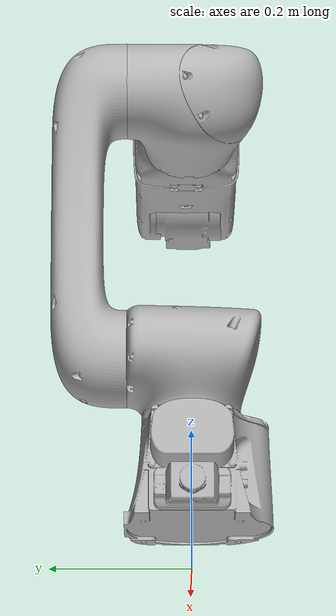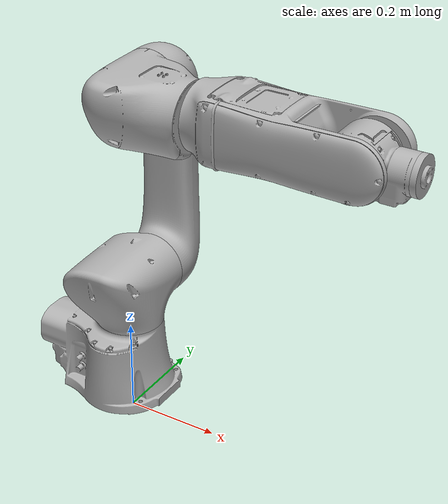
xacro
<?xml version="1.0"?>
<robot xmlns:xacro="http://www.ros.org/wiki/xacro" name="rv5as_so-assy_model_asm">
    <xacro:arg name="initial_positions_file" default="initial_positions.yaml" />

    <!-- Import rv5as_so-assy_model_asm urdf file -->
    <xacro:include filename="$(find rv5as_so-assy_model_asm_description)/urdf/rv5as_so-assy_model_asm.xacro" />

    <!-- Import control_xacro -->
    <xacro:include filename="rv5as_so-assy_model_asm.ros2_control.xacro" />

    <xacro:rv5as_so-assy_model_asm_ros2_control name="FakeSystem" initial_positions_file="$(arg initial_positions_file)"/>

</robot>

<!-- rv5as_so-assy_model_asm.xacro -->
<robot name="rv5as_so-assy_model_asm" xmlns:xacro="http://www.ros.org/wiki/xacro">

<xacro:include filename="$(find rv5as_so-assy_model_asm_description)/urdf/materials.xacro" />
<xacro:include filename="$(find rv5as_so-assy_model_asm_description)/urdf/rv5as_so-assy_model_asm.ros2control.xml" />
<xacro:include filename="$(find rv5as_so-assy_model_asm_description)/urdf/rv5as_so-assy_model_asm.gazebo" />
<link name="base_link">
  <inertial>
    <origin xyz="0.04193492732793794 -0.025801033399371037 0.025780851352072816" rpy="0 0 0"/>
    <mass value="44.57854074603627"/>
    <inertia ixx="0.183167" iyy="0.31138" izz="0.308937" ixy="0.014262" iyz="0.002097" ixz="0.004808"/>
  </inertial>
  <visual>
    <origin xyz="0 0 0" rpy="0 0 0"/>
    <geometry>
      <mesh filename="file://$(find rv5as_so-assy_model_asm_description)/meshes/base_link.stl" scale="0.001 0.001 0.001"/>
    </geometry>
    <material name="silver"/>
  </visual>
  <collision>
    <origin xyz="0 0 0" rpy="0 0 0"/>
    <geometry>
      <mesh filename="file://$(find rv5as_so-assy_model_asm_description)/meshes/base_link.stl" scale="0.001 0.001 0.001"/>
    </geometry>
  </collision>
</link>

<link name="RV5AS_J6_INTERFACE_1">
  <inertial>
    <origin xyz="0.006905978768548482 -1.6300782513731238e-07 0.00016622283485434597" rpy="0 0 0"/>
    <mass value="0.5076989572815161"/>
    <inertia ixx="0.000369" iyy="0.000193" izz="0.000196" ixy="0.0" iyz="0.0" ixz="0.0"/>
  </inertial>
  <visual>
    <origin xyz="-0.689809 0.018798 -0.609303" rpy="0 0 0"/>
    <geometry>
      <mesh filename="file://$(find rv5as_so-assy_model_asm_description)/meshes/RV5AS_J6_INTERFACE_1.stl" scale="0.001 0.001 0.001"/>
    </geometry>
    <material name="silver"/>
  </visual>
  <collision>
    <origin xyz="-0.689809 0.018798 -0.609303" rpy="0 0 0"/>
    <geometry>
      <mesh filename="file://$(find rv5as_so-assy_model_asm_description)/meshes/RV5AS_J6_INTERFACE_1.stl" scale="0.001 0.001 0.001"/>
    </geometry>
  </collision>
</link>

<link name="RV5AS_J5_WRIST_MODEL_1">
  <inertial>
    <origin xyz="0.014479812581743357 0.05179027280313545 -0.001806558647586165" rpy="0 0 0"/>
    <mass value="11.967157567611743"/>
    <inertia ixx="0.02046" iyy="0.032247" izz="0.031083" ixy="-0.000209" iyz="1.2e-05" ixz="0.001214"/>
  </inertial>
  <visual>
    <origin xyz="-0.583809 0.071798 -0.609303" rpy="0 0 0"/>
    <geometry>
      <mesh filename="file://$(find rv5as_so-assy_model_asm_description)/meshes/RV5AS_J5_WRIST_MODEL_1.stl" scale="0.001 0.001 0.001"/>
    </geometry>
    <material name="silver"/>
  </visual>
  <collision>
    <origin xyz="-0.583809 0.071798 -0.609303" rpy="0 0 0"/>
    <geometry>
      <mesh filename="file://$(find rv5as_so-assy_model_asm_description)/meshes/RV5AS_J5_WRIST_MODEL_1.stl" scale="0.001 0.001 0.001"/>
    </geometry>
  </collision>
</link>

<link name="RV5AS_J4_NO2ARM_MODEL_1">
  <inertial>
    <origin xyz="0.15711148103133402 0.0013040246051381106 -0.0006263390969690752" rpy="0 0 0"/>
    <mass value="44.10461061203024"/>
    <inertia ixx="0.156504" iyy="0.502164" izz="0.547798" ixy="-0.010242" iyz="-6.9e-05" ixz="-0.000508"/>
  </inertial>
  <visual>
    <origin xyz="-0.239588 0.020298 -0.612556" rpy="0 0 0"/>
    <geometry>
      <mesh filename="file://$(find rv5as_so-assy_model_asm_description)/meshes/RV5AS_J4_NO2ARM_MODEL_1.stl" scale="0.001 0.001 0.001"/>
    </geometry>
    <material name="silver"/>
  </visual>
  <collision>
    <origin xyz="-0.239588 0.020298 -0.612556" rpy="0 0 0"/>
    <geometry>
      <mesh filename="file://$(find rv5as_so-assy_model_asm_description)/meshes/RV5AS_J4_NO2ARM_MODEL_1.stl" scale="0.001 0.001 0.001"/>
    </geometry>
  </collision>
</link>

<link name="RV5AS_J3_ELBOW_MODEL_1">
  <inertial>
    <origin xyz="0.04744736468726621 -0.09056179372334217 -0.0024092790206754477" rpy="0 0 0"/>
    <mass value="37.70192536503796"/>
    <inertia ixx="0.146998" iyy="0.182219" izz="0.213997" ixy="0.008908" iyz="0.00227" ixz="0.004558"/>
  </inertial>
  <visual>
    <origin xyz="-0.082089 -0.073786 -0.608464" rpy="0 0 0"/>
    <geometry>
      <mesh filename="file://$(find rv5as_so-assy_model_asm_description)/meshes/RV5AS_J3_ELBOW_MODEL_1.stl" scale="0.001 0.001 0.001"/>
    </geometry>
    <material name="silver"/>
  </visual>
  <collision>
    <origin xyz="-0.082089 -0.073786 -0.608464" rpy="0 0 0"/>
    <geometry>
      <mesh filename="file://$(find rv5as_so-assy_model_asm_description)/meshes/RV5AS_J3_ELBOW_MODEL_1.stl" scale="0.001 0.001 0.001"/>
    </geometry>
  </collision>
</link>

<link name="RV5AS_J2_NO1ARM_MODEL_1">
  <inertial>
    <origin xyz="1.9750651894523408e-07 0.05757382997503861 0.2050003219127163" rpy="0 0 0"/>
    <mass value="40.15203942940935"/>
    <inertia ixx="1.065848" iyy="1.077982" izz="0.074735" ixy="-0.0" iyz="0.0" ixz="1e-06"/>
  </inertial>
  <visual>
    <origin xyz="-0.082089 -0.073786 -0.198464" rpy="0 0 0"/>
    <geometry>
      <mesh filename="file://$(find rv5as_so-assy_model_asm_description)/meshes/RV5AS_J2_NO1ARM_MODEL_1.stl" scale="0.001 0.001 0.001"/>
    </geometry>
    <material name="silver"/>
  </visual>
  <collision>
    <origin xyz="-0.082089 -0.073786 -0.198464" rpy="0 0 0"/>
    <geometry>
      <mesh filename="file://$(find rv5as_so-assy_model_asm_description)/meshes/RV5AS_J2_NO1ARM_MODEL_1.stl" scale="0.001 0.001 0.001"/>
    </geometry>
  </collision>
</link>

<link name="RV5AS_J1_SHOULDER_MODEL_1">
  <inertial>
    <origin xyz="-0.017826012415219042 0.003580767806865783 0.07712681133416387" rpy="0 0 0"/>
    <mass value="30.517792236378934"/>
    <inertia ixx="0.122627" iyy="0.10972" izz="0.138699" ixy="-0.003265" iyz="0.002156" ixz="0.003964"/>
  </inertial>
  <visual>
    <origin xyz="-0.082093 0.017714 -0.115468" rpy="0 0 0"/>
    <geometry>
      <mesh filename="file://$(find rv5as_so-assy_model_asm_description)/meshes/RV5AS_J1_SHOULDER_MODEL_1.stl" scale="0.001 0.001 0.001"/>
    </geometry>
    <material name="silver"/>
  </visual>
  <collision>
    <origin xyz="-0.082093 0.017714 -0.115468" rpy="0 0 0"/>
    <geometry>
      <mesh filename="file://$(find rv5as_so-assy_model_asm_description)/meshes/RV5AS_J1_SHOULDER_MODEL_1.stl" scale="0.001 0.001 0.001"/>
    </geometry>
  </collision>
</link>

<joint name="Revolute 1" type="continuous">
  <origin xyz="0.106 0.053 0.0" rpy="0 0 0"/>
  <parent link="RV5AS_J5_WRIST_MODEL_1"/>
  <child link="RV5AS_J6_INTERFACE_1"/>
  <axis xyz="1.0 -0.0 0.0"/>
</joint>

<joint name="Revolute 2" type="continuous">
  <origin xyz="0.344221 -0.0515 -0.003253" rpy="0 0 0"/>
  <parent link="RV5AS_J4_NO2ARM_MODEL_1"/>
  <child link="RV5AS_J5_WRIST_MODEL_1"/>
  <axis xyz="0.0 1.0 -0.0"/>
</joint>

<joint name="Revolute 3" type="continuous">
  <origin xyz="0.157499 -0.094084 0.004092" rpy="0 0 0"/>
  <parent link="RV5AS_J3_ELBOW_MODEL_1"/>
  <child link="RV5AS_J4_NO2ARM_MODEL_1"/>
  <axis xyz="1.0 0.0 0.0"/>
</joint>

<joint name="Revolute 4" type="continuous">
  <origin xyz="0.0 0.0 0.41" rpy="0 0 0"/>
  <parent link="RV5AS_J2_NO1ARM_MODEL_1"/>
  <child link="RV5AS_J3_ELBOW_MODEL_1"/>
  <axis xyz="0.0 -1.0 0.0"/>
</joint>

<joint name="Revolute 5" type="continuous">
  <origin xyz="-4e-06 0.0915 0.082996" rpy="0 0 0"/>
  <parent link="RV5AS_J1_SHOULDER_MODEL_1"/>
  <child link="RV5AS_J2_NO1ARM_MODEL_1"/>
  <axis xyz="0.0 1.0 0.0"/>
</joint>

<joint name="Revolute 6" type="continuous">
  <origin xyz="0.082093 -0.017714 0.115468" rpy="0 0 0"/>
  <parent link="base_link"/>
  <child link="RV5AS_J1_SHOULDER_MODEL_1"/>
  <axis xyz="0.0 0.0 1.0"/>
</joint>

</robot>

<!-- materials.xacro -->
<robot name="rv5as_so-assy_model_asm" xmlns:xacro="http://www.ros.org/wiki/xacro" >

<material name="silver">
  <color rgba="0.700 0.700 0.700 1.000"/>
</material>

</robot>

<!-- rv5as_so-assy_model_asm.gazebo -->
<robot name="rv5as_so-assy_model_asm" xmlns:xacro="http://www.ros.org/wiki/xacro" >

<xacro:property name="body_color" value="Gazebo/Silver" />

<gazebo reference="base_link">
  <material>${body_color}</material>
  <mu1>0.2</mu1>
  <mu2>0.2</mu2>
  <self_collide>true</self_collide>
  <gravity>true</gravity>
</gazebo>

<gazebo reference="RV5AS_J6_INTERFACE_1">
  <material>${body_color}</material>
  <mu1>0.2</mu1>
  <mu2>0.2</mu2>
  <self_collide>true</self_collide>
</gazebo>

<gazebo reference="RV5AS_J5_WRIST_MODEL_1">
  <material>${body_color}</material>
  <mu1>0.2</mu1>
  <mu2>0.2</mu2>
  <self_collide>true</self_collide>
</gazebo>

<gazebo reference="RV5AS_J4_NO2ARM_MODEL_1">
  <material>${body_color}</material>
  <mu1>0.2</mu1>
  <mu2>0.2</mu2>
  <self_collide>true</self_collide>
</gazebo>

<gazebo reference="RV5AS_J3_ELBOW_MODEL_1">
  <material>${body_color}</material>
  <mu1>0.2</mu1>
  <mu2>0.2</mu2>
  <self_collide>true</self_collide>
</gazebo>

<gazebo reference="RV5AS_J2_NO1ARM_MODEL_1">
  <material>${body_color}</material>
  <mu1>0.2</mu1>
  <mu2>0.2</mu2>
  <self_collide>true</self_collide>
</gazebo>

<gazebo reference="RV5AS_J1_SHOULDER_MODEL_1">
  <material>${body_color}</material>
  <mu1>0.2</mu1>
  <mu2>0.2</mu2>
  <self_collide>true</self_collide>
</gazebo>

</robot>
